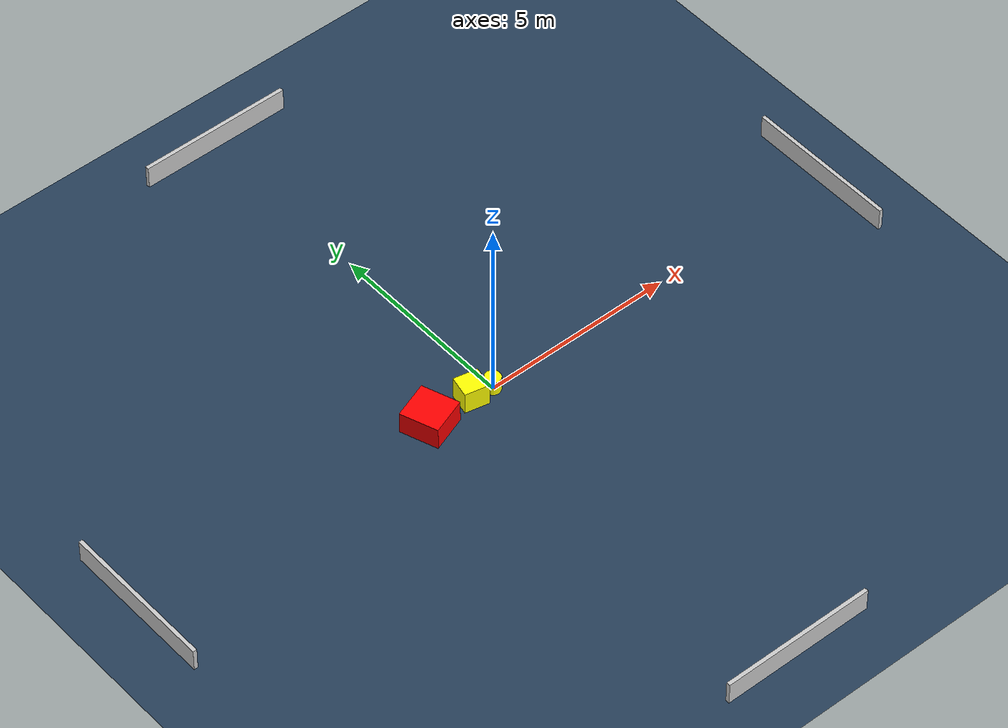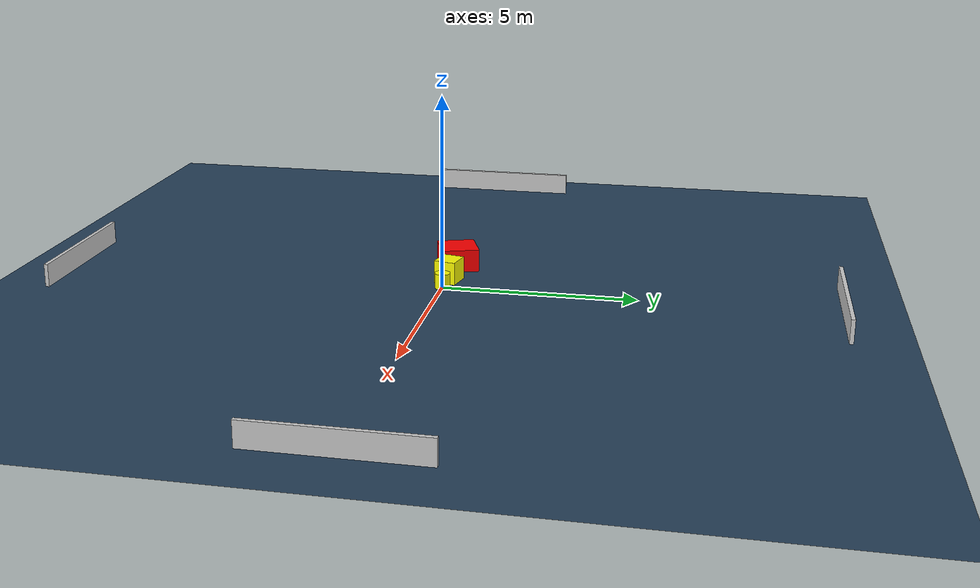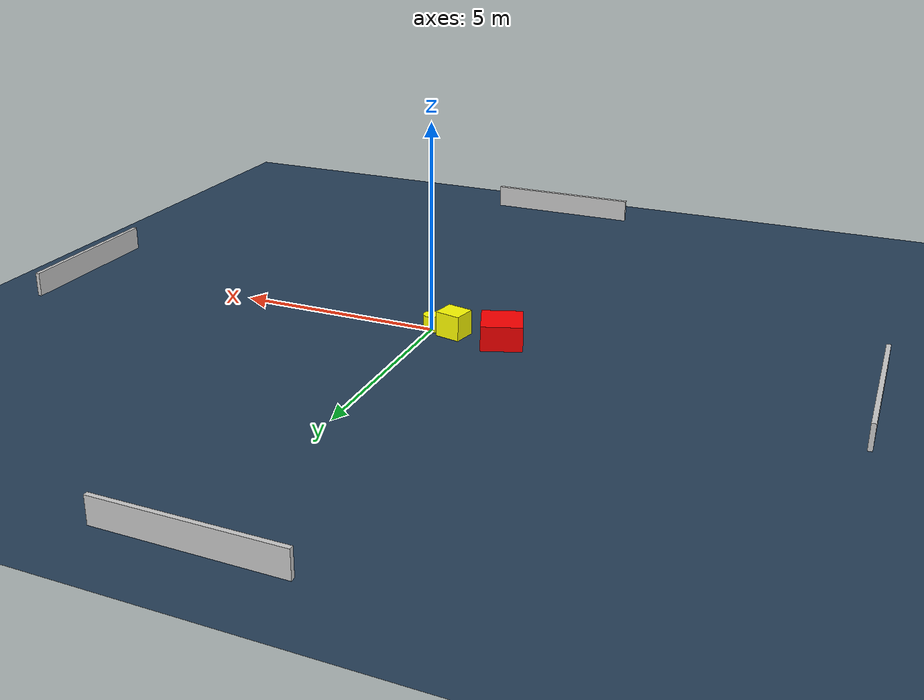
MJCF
<?xml version="1.0" ?>
<mujoco model="generated_environment">
  <option timestep="0.01" integrator="RK4" cone="elliptic"/>
  <default>
    <geom density="1"/>
  </default>
  <asset>
    <texture builtin="gradient" height="3072" name="skybox" rgb1="0.3 0.5 0.7" rgb2="0 0 0" type="skybox" width="512"/>
    <texture builtin="checker" height="300" name="groundplane" rgb1="0.2 0.3 0.4" rgb2="0.1 0.2 0.3" type="2d" width="300"/>
    <material name="groundplane" reflectance="0.2" texrepeat="5 5" texture="groundplane"/>
  </asset>
  <worldbody>
    <light dir="0 0 -1" directional="true" pos="0 0 1.5"/>
    <geom condim="3" friction="0.5 0.005 0.001" material="groundplane" name="floor" pos="0 0 0" size="0 0 0.05" type="plane"/>
    <body name="walls">
      <geom name="wall_1" condim="4" pos="-10.0 0.0 0.3" rgba="0.800000011920929 0.800000011920929 0.800000011920929 1.0" size="0.05 2.0 0.3" type="box"/>
      <geom name="wall_2" condim="4" pos="10.0 0.0 0.3" rgba="0.800000011920929 0.800000011920929 0.800000011920929 1.0" size="0.05 2.0 0.3" type="box"/>
      <geom name="wall_3" condim="4" pos="0.0 -10.0 0.3" rgba="0.800000011920929 0.800000011920929 0.800000011920929 1.0" size="2.0 0.05 0.3" type="box"/>
      <geom name="wall_4" condim="4" pos="0.0 10.0 0.3" rgba="0.800000011920929 0.800000011920929 0.800000011920929 1.0" size="2.0 0.05 0.3" type="box"/>
    </body>
    <body name="robot">
      <joint name="joint_x" type="slide" pos="0 0 0" axis="1 0 0"/>
      <joint name="joint_y" type="slide" pos="0 0 0" axis="0 1 0"/>
      <geom name="robot" type="cylinder" pos="0.0 0.0 0.2" size="0.2 0.2 0.0" mass="5.0" friction="1.0 0.005 0.0001" condim="4" rgba="1.0 1.0 0.0 1.0"/>
    </body>
    <body name="obstacle_1_movable">
      <geom name="obstacle_1_movable" condim="4" pos="-0.5884357914858094 0.05432265398784148 0.3" euler="0 0 167.77625364487912" friction="0.0 0.005 0.001" rgba="1.0 1.0 0.0 1.0" size="0.31361176686681 0.28232342833038226 0.3" type="box" mass="0.1"/>
      <joint type="free"/>
    </body>
    <body name="obstacle_2_static">
      <geom name="obstacle_2_static" condim="4" pos="-1.7876839934093829 0.05727383980048954 0.3" euler="0 0 199.75498399480367" friction="0.0 0.005 0.001" rgba="1.0 0.0 0.0 1.0" size="0.48604963212110985 0.4986569778915317 0.3" type="box"/>
    </body>
  </worldbody>
  <actuator>
    <motor name="actuator_x" joint="joint_x" gear="1" ctrlrange="-1 1"/>
    <motor name="actuator_y" joint="joint_y" gear="1" ctrlrange="-1 1"/>
  </actuator>
</mujoco>
